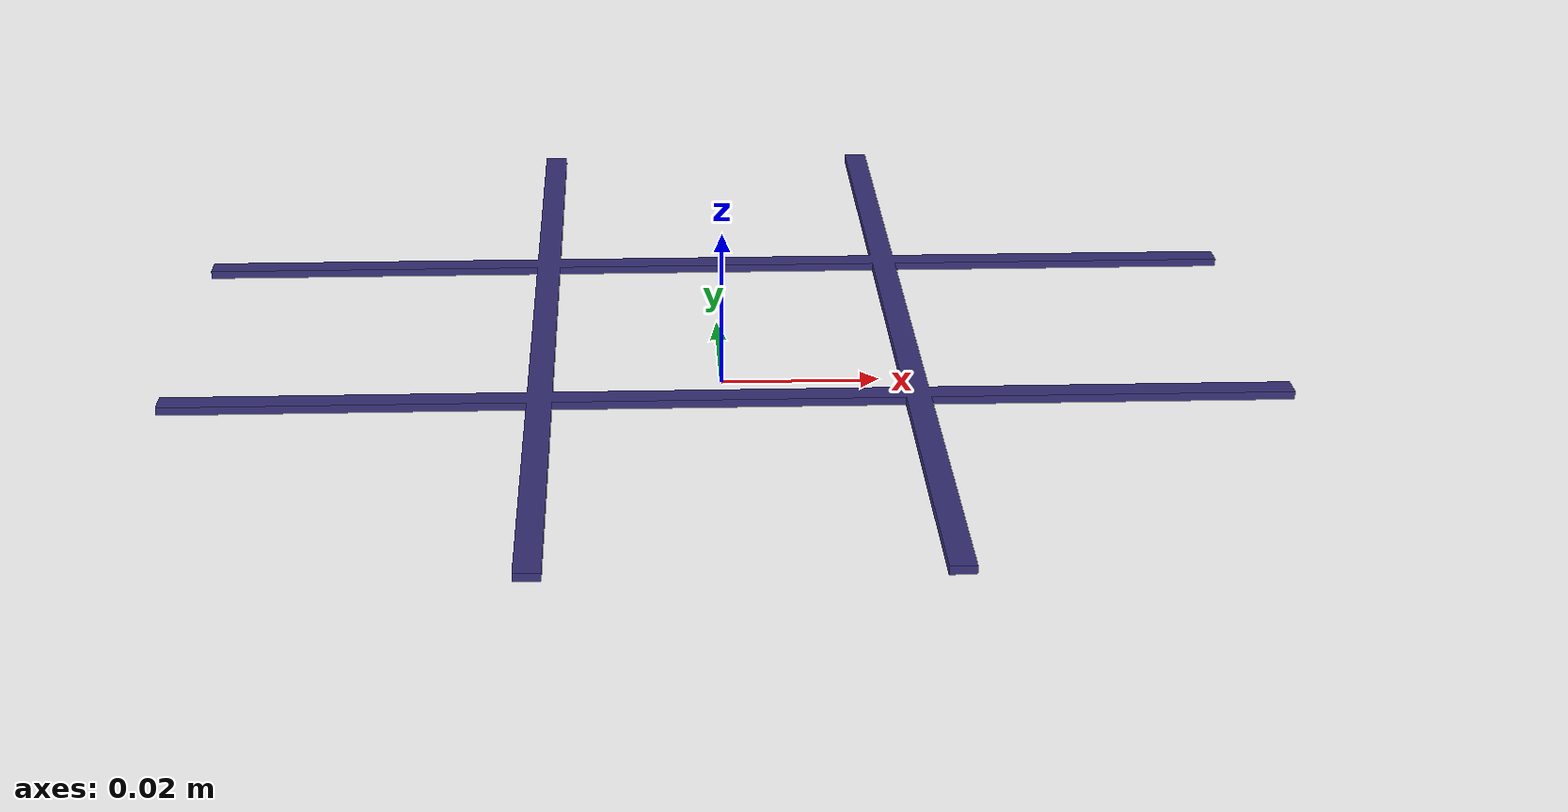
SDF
<?xml version="1.0" ?>
<sdf version='1.4'>
  <model name="grid">
      <static>1</static>
      <link name='link'>
        <visual name='visual'>
            <geometry>
                <mesh>
                    <uri>model://grid/meshes/grid.dae</uri>
                    <scale>1 1 1</scale>
                </mesh>
            </geometry>
        </visual>
      </link>
  </model>
</sdf>
